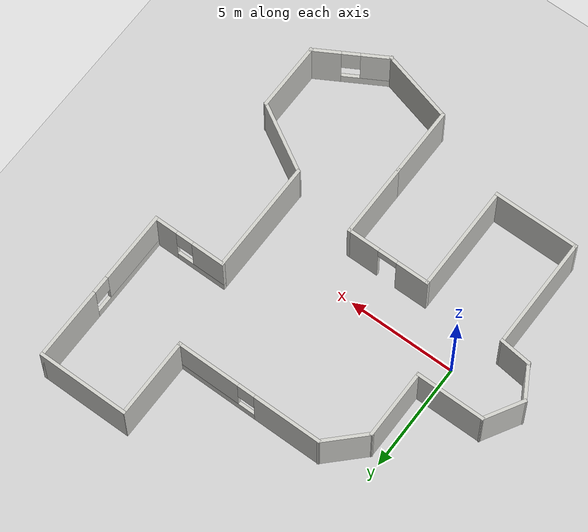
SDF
<?xml version="1.0" ?>
<sdf version="1.4">
  <world name="default">
    <include>
      <uri>model://ground_plane</uri>
    </include>
    <include>
      <uri>model://sun</uri>
    </include>
    <include>
      <uri>model://nav_test</uri>
      <name>nav_test</name>
      <pose>4.7 0.47 0 0 0 0</pose>
    </include>
    <gui fullscreen='0'>
      <camera name='user_camera'>
        <pose>0.8 0.0 12.0 0 1.5708 0</pose>
        <view_controller>orbit</view_controller>
      </camera>
    </gui>
  </world>
</sdf>

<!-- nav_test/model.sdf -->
<sdf version='1.6'>
  <model name='nav_test'>
    <pose frame=''>5.49626 -0.200747 0 0 -0 0</pose>
    <link name='Wall_1'>
      <collision name='Wall_1_Collision'>
        <geometry>
          <box>
            <size>1.75 0.15 2.5</size>
          </box>
        </geometry>
        <pose frame=''>0 0 1.25 0 -0 0</pose>
      </collision>
      <visual name='Wall_1_Visual'>
        <pose frame=''>0 0 1.25 0 -0 0</pose>
        <geometry>
          <box>
            <size>1.75 0.15 2.5</size>
          </box>
        </geometry>
        <material>
          <script>
            <uri>file://media/materials/scripts/gazebo.material</uri>
            <name>Gazebo/CeilingTiled</name>
          </script>
          <ambient>1 1 1 1</ambient>
        </material>
        <meta>
          <layer>0</layer>
        </meta>
      </visual>
      <pose frame=''>-7.81626 -1.01625 0 0 -0 2.09428</pose>
    </link>
    <link name='Wall_10'>
      <pose frame=''>6.56874 2.11375 0 0 -0 3.14159</pose>
      <visual name='Wall_10_Visual_0'>
        <pose frame=''>-1.18335 0 1.25 0 -0 0</pose>
        <geometry>
          <box>
            <size>1.13331 0.15 2.5</size>
          </box>
        </geometry>
        <material>
          <script>
            <uri>file://media/materials/scripts/gazebo.material</uri>
            <name>Gazebo/CeilingTiled</name>
          </script>
          <ambient>1 1 1 1</ambient>
        </material>
        <meta>
          <layer>0</layer>
        </meta>
      </visual>
      <collision name='Wall_10_Collision_0'>
        <geometry>
          <box>
            <size>1.13331 0.15 2.5</size>
          </box>
        </geometry>
        <pose frame=''>-1.18335 0 1.25 0 -0 0</pose>
      </collision>
      <visual name='Wall_10_Visual_1'>
        <pose frame=''>0.566654 0 0.25 0 -0 0</pose>
        <geometry>
          <box>
            <size>2.36669 0.15 0.5</size>
          </box>
        </geometry>
        <material>
          <script>
            <uri>file://media/materials/scripts/gazebo.material</uri>
            <name>Gazebo/CeilingTiled</name>
          </script>
          <ambient>1 1 1 1</ambient>
        </material>
        <meta>
          <layer>0</layer>
        </meta>
      </visual>
      <collision name='Wall_10_Collision_1'>
        <geometry>
          <box>
            <size>2.36669 0.15 0.5</size>
          </box>
        </geometry>
        <pose frame=''>0.566654 0 0.25 0 -0 0</pose>
      </collision>
      <visual name='Wall_10_Visual_2'>
        <pose frame=''>0.966654 0 1.5 0 -0 0</pose>
        <geometry>
          <box>
            <size>1.56669 0.15 2</size>
          </box>
        </geometry>
        <material>
          <script>
            <uri>file://media/materials/scripts/gazebo.material</uri>
            <name>Gazebo/CeilingTiled</name>
          </script>
          <ambient>1 1 1 1</ambient>
        </material>
        <meta>
          <layer>0</layer>
        </meta>
      </visual>
      <collision name='Wall_10_Collision_2'>
        <geometry>
          <box>
            <size>1.56669 0.15 2</size>
          </box>
        </geometry>
        <pose frame=''>0.966654 0 1.5 0 -0 0</pose>
      </collision>
      <visual name='Wall_10_Visual_3'>
        <pose frame=''>-0.216693 0 1.9 0 -0 0</pose>
        <geometry>
          <box>
            <size>0.8 0.15 1.2</size>
          </box>
        </geometry>
        <material>
          <script>
            <uri>file://media/materials/scripts/gazebo.material</uri>
            <name>Gazebo/CeilingTiled</name>
          </script>
          <ambient>1 1 1 1</ambient>
        </material>
        <meta>
          <layer>0</layer>
        </meta>
      </visual>
      <collision name='Wall_10_Collision_3'>
        <geometry>
          <box>
            <size>0.8 0.15 1.2</size>
          </box>
        </geometry>
        <pose frame=''>-0.216693 0 1.9 0 -0 0</pose>
      </collision>
    </link>
    <link name='Wall_11'>
      <collision name='Wall_11_Collision'>
        <geometry>
          <box>
            <size>5.25 0.15 2.5</size>
          </box>
        </geometry>
        <pose frame=''>0 0 1.25 0 -0 0</pose>
      </collision>
      <visual name='Wall_11_Visual'>
        <pose frame=''>0 0 1.25 0 -0 0</pose>
        <geometry>
          <box>
            <size>5.25 0.15 2.5</size>
          </box>
        </geometry>
        <material>
          <script>
            <uri>file://media/materials/scripts/gazebo.material</uri>
            <name>Gazebo/CeilingTiled</name>
          </script>
          <ambient>1 1 1 1</ambient>
        </material>
        <meta>
          <layer>0</layer>
        </meta>
      </visual>
      <pose frame=''>4.89374 -0.436253 0 0 -0 -1.5708</pose>
    </link>
    <link name='Wall_12'>
      <collision name='Wall_12_Collision'>
        <geometry>
          <box>
            <size>3.5 0.15 2.5</size>
          </box>
        </geometry>
        <pose frame=''>0 0 1.25 0 -0 0</pose>
      </collision>
      <visual name='Wall_12_Visual'>
        <pose frame=''>0 0 1.25 0 -0 0</pose>
        <geometry>
          <box>
            <size>3.5 0.15 2.5</size>
          </box>
        </geometry>
        <material>
          <script>
            <uri>file://media/materials/scripts/gazebo.material</uri>
            <name>Gazebo/CeilingTiled</name>
          </script>
          <ambient>1 1 1 1</ambient>
        </material>
        <meta>
          <layer>0</layer>
        </meta>
      </visual>
      <pose frame=''>6.34424 -3.82375 0 0 -0 -0.523626</pose>
    </link>
    <link name='Wall_13'>
      <collision name='Wall_13_Collision'>
        <geometry>
          <box>
            <size>3.25 0.15 2.5</size>
          </box>
        </geometry>
        <pose frame=''>0 0 1.25 0 -0 0</pose>
      </collision>
      <visual name='Wall_13_Visual'>
        <pose frame=''>0 0 1.25 0 -0 0</pose>
        <geometry>
          <box>
            <size>3.25 0.15 2.5</size>
          </box>
        </geometry>
        <material>
          <script>
            <uri>file://media/materials/scripts/gazebo.material</uri>
            <name>Gazebo/CeilingTiled</name>
          </script>
          <ambient>1 1 1 1</ambient>
        </material>
        <meta>
          <layer>0</layer>
        </meta>
      </visual>
      <pose frame=''>7.79474 -6.21125 0 0 -0 -1.5708</pose>
    </link>
    <link name='Wall_14'>
      <pose frame=''>6.34424 -8.59875 0 0 -0 -2.61797</pose>
      <visual name='Wall_14_Visual_0'>
        <pose frame=''>-1.07636 0 1.25 0 -0 0</pose>
        <geometry>
          <box>
            <size>1.34727 0.15 2.5</size>
          </box>
        </geometry>
        <material>
          <script>
            <uri>file://media/materials/scripts/gazebo.material</uri>
            <name>Gazebo/CeilingTiled</name>
          </script>
          <ambient>1 1 1 1</ambient>
        </material>
        <meta>
          <layer>0</layer>
        </meta>
      </visual>
      <collision name='Wall_14_Collision_0'>
        <geometry>
          <box>
            <size>1.34727 0.15 2.5</size>
          </box>
        </geometry>
        <pose frame=''>-1.07636 0 1.25 0 -0 0</pose>
      </collision>
      <visual name='Wall_14_Visual_1'>
        <pose frame=''>0.673636 0 0.25 0 -0 0</pose>
        <geometry>
          <box>
            <size>2.15273 0.15 0.5</size>
          </box>
        </geometry>
        <material>
          <script>
            <uri>file://media/materials/scripts/gazebo.material</uri>
            <name>Gazebo/CeilingTiled</name>
          </script>
          <ambient>1 1 1 1</ambient>
        </material>
        <meta>
          <layer>0</layer>
        </meta>
      </visual>
      <collision name='Wall_14_Collision_1'>
        <geometry>
          <box>
            <size>2.15273 0.15 0.5</size>
          </box>
        </geometry>
        <pose frame=''>0.673636 0 0.25 0 -0 0</pose>
      </collision>
      <visual name='Wall_14_Visual_2'>
        <pose frame=''>1.07364 0 1.5 0 -0 0</pose>
        <geometry>
          <box>
            <size>1.35273 0.15 2</size>
          </box>
        </geometry>
        <material>
          <script>
            <uri>file://media/materials/scripts/gazebo.material</uri>
            <name>Gazebo/CeilingTiled</name>
          </script>
          <ambient>1 1 1 1</ambient>
        </material>
        <meta>
          <layer>0</layer>
        </meta>
      </visual>
      <collision name='Wall_14_Collision_2'>
        <geometry>
          <box>
            <size>1.35273 0.15 2</size>
          </box>
        </geometry>
        <pose frame=''>1.07364 0 1.5 0 -0 0</pose>
      </collision>
      <visual name='Wall_14_Visual_3'>
        <pose frame=''>-0.002728 0 1.9 0 -0 0</pose>
        <geometry>
          <box>
            <size>0.8 0.15 1.2</size>
          </box>
        </geometry>
        <material>
          <script>
            <uri>file://media/materials/scripts/gazebo.material</uri>
            <name>Gazebo/CeilingTiled</name>
          </script>
          <ambient>1 1 1 1</ambient>
        </material>
        <meta>
          <layer>0</layer>
        </meta>
      </visual>
      <collision name='Wall_14_Collision_3'>
        <geometry>
          <box>
            <size>0.8 0.15 1.2</size>
          </box>
        </geometry>
        <pose frame=''>-0.002728 0 1.9 0 -0 0</pose>
      </collision>
    </link>
    <link name='Wall_15'>
      <collision name='Wall_15_Collision'>
        <geometry>
          <box>
            <size>3.5 0.15 2.5</size>
          </box>
        </geometry>
        <pose frame=''>0 0 1.25 0 -0 0</pose>
      </collision>
      <visual name='Wall_15_Visual'>
        <pose frame=''>0 0 1.25 0 -0 0</pose>
        <geometry>
          <box>
            <size>3.5 0.15 2.5</size>
          </box>
        </geometry>
        <material>
          <script>
            <uri>file://media/materials/scripts/gazebo.material</uri>
            <name>Gazebo/CeilingTiled</name>
          </script>
          <ambient>1 1 1 1</ambient>
        </material>
        <meta>
          <layer>0</layer>
        </meta>
      </visual>
      <pose frame=''>3.27574 -9.00275 0 0 -0 2.87982</pose>
    </link>
    <link name='Wall_16'>
      <collision name='Wall_16_Collision'>
        <geometry>
          <box>
            <size>3.25 0.15 2.5</size>
          </box>
        </geometry>
        <pose frame=''>0 0 1.25 0 -0 0</pose>
      </collision>
      <visual name='Wall_16_Visual'>
        <pose frame=''>0 0 1.25 0 -0 0</pose>
        <geometry>
          <box>
            <size>3.25 0.15 2.5</size>
          </box>
        </geometry>
        <material>
          <script>
            <uri>file://media/materials/scripts/gazebo.material</uri>
            <name>Gazebo/CeilingTiled</name>
          </script>
          <ambient>1 1 1 1</ambient>
        </material>
        <meta>
          <layer>0</layer>
        </meta>
      </visual>
      <pose frame=''>1.65774 -7.01925 0 0 -0 1.5708</pose>
    </link>
    <link name='Wall_17'>
      <collision name='Wall_17_Collision'>
        <geometry>
          <box>
            <size>3.5 0.15 2.5</size>
          </box>
        </geometry>
        <pose frame=''>0 0 1.25 0 -0 0</pose>
      </collision>
      <visual name='Wall_17_Visual'>
        <pose frame=''>0 0 1.25 0 -0 0</pose>
        <geometry>
          <box>
            <size>3.5 0.15 2.5</size>
          </box>
        </geometry>
        <material>
          <script>
            <uri>file://media/materials/scripts/gazebo.material</uri>
            <name>Gazebo/CeilingTiled</name>
          </script>
          <ambient>1 1 1 1</ambient>
        </material>
        <meta>
          <layer>0</layer>
        </meta>
      </visual>
      <pose frame=''>1.65774 -3.79425 0 0 -0 1.5708</pose>
    </link>
    <link name='Wall_18'>
      <pose frame=''>-0.267258 -2.11925 0 0 -0 3.14159</pose>
      <visual name='Wall_18_Visual_0'>
        <pose frame=''>-1.2314 0 1.25 0 -0 0</pose>
        <geometry>
          <box>
            <size>1.53721 0.15 2.5</size>
          </box>
        </geometry>
        <material>
          <script>
            <uri>file://media/materials/scripts/gazebo.material</uri>
            <name>Gazebo/CeilingTiled</name>
          </script>
          <ambient>1 1 1 1</ambient>
        </material>
        <meta>
          <layer>0</layer>
        </meta>
      </visual>
      <collision name='Wall_18_Collision_0'>
        <geometry>
          <box>
            <size>1.53721 0.15 2.5</size>
          </box>
        </geometry>
        <pose frame=''>-1.2314 0 1.25 0 -0 0</pose>
      </collision>
      <visual name='Wall_18_Visual_1'>
        <pose frame=''>1.2186 0 1.25 0 -0 0</pose>
        <geometry>
          <box>
            <size>1.56279 0.15 2.5</size>
          </box>
        </geometry>
        <material>
          <script>
            <uri>file://media/materials/scripts/gazebo.material</uri>
            <name>Gazebo/CeilingTiled</name>
          </script>
          <ambient>1 1 1 1</ambient>
        </material>
        <meta>
          <layer>0</layer>
        </meta>
      </visual>
      <collision name='Wall_18_Collision_1'>
        <geometry>
          <box>
            <size>1.56279 0.15 2.5</size>
          </box>
        </geometry>
        <pose frame=''>1.2186 0 1.25 0 -0 0</pose>
      </collision>
      <visual name='Wall_18_Visual_2'>
        <pose frame=''>-0.012794 0 2.25 0 -0 0</pose>
        <geometry>
          <box>
            <size>0.9 0.15 0.5</size>
          </box>
        </geometry>
        <material>
          <script>
            <uri>file://media/materials/scripts/gazebo.material</uri>
            <name>Gazebo/CeilingTiled</name>
          </script>
          <ambient>1 1 1 1</ambient>
        </material>
        <meta>
          <layer>0</layer>
        </meta>
      </visual>
      <collision name='Wall_18_Collision_2'>
        <geometry>
          <box>
            <size>0.9 0.15 0.5</size>
          </box>
        </geometry>
        <pose frame=''>-0.012794 0 2.25 0 -0 0</pose>
      </collision>
    </link>
    <link name='Wall_19'>
      <collision name='Wall_19_Collision'>
        <geometry>
          <box>
            <size>5 0.15 2.5</size>
          </box>
        </geometry>
        <pose frame=''>0 0 1.25 0 -0 0</pose>
      </collision>
      <visual name='Wall_19_Visual'>
        <pose frame=''>0 0 1.25 0 -0 0</pose>
        <geometry>
          <box>
            <size>5 0.15 2.5</size>
          </box>
        </geometry>
        <material>
          <script>
            <uri>file://media/materials/scripts/gazebo.material</uri>
            <name>Gazebo/CeilingTiled</name>
          </script>
          <ambient>1 1 1 1</ambient>
        </material>
        <meta>
          <layer>0</layer>
        </meta>
      </visual>
      <pose frame=''>-2.19226 -4.54425 0 0 -0 -1.5708</pose>
    </link>
    <link name='Wall_2'>
      <collision name='Wall_2_Collision'>
        <geometry>
          <box>
            <size>2 0.15 2.5</size>
          </box>
        </geometry>
        <pose frame=''>0 0 1.25 0 -0 0</pose>
      </collision>
      <visual name='Wall_2_Visual'>
        <pose frame=''>0 0 1.25 0 -0 0</pose>
        <geometry>
          <box>
            <size>2 0.15 2.5</size>
          </box>
        </geometry>
        <material>
          <script>
            <uri>file://media/materials/scripts/gazebo.material</uri>
            <name>Gazebo/CeilingTiled</name>
          </script>
          <ambient>1 1 1 1</ambient>
        </material>
        <meta>
          <layer>0</layer>
        </meta>
      </visual>
      <pose frame=''>-7.75376 0.477747 0 0 -0 1.04716</pose>
    </link>
    <link name='Wall_20'>
      <collision name='Wall_20_Collision'>
        <geometry>
          <box>
            <size>4 0.15 2.5</size>
          </box>
        </geometry>
        <pose frame=''>0 0 1.25 0 -0 0</pose>
      </collision>
      <visual name='Wall_20_Visual'>
        <pose frame=''>0 0 1.25 0 -0 0</pose>
        <geometry>
          <box>
            <size>4 0.15 2.5</size>
          </box>
        </geometry>
        <material>
          <script>
            <uri>file://media/materials/scripts/gazebo.material</uri>
            <name>Gazebo/CeilingTiled</name>
          </script>
          <ambient>1 1 1 1</ambient>
        </material>
        <meta>
          <layer>0</layer>
        </meta>
      </visual>
      <pose frame=''>-4.11726 -6.96925 0 0 -0 3.14159</pose>
    </link>
    <link name='Wall_21'>
      <collision name='Wall_21_Collision'>
        <geometry>
          <box>
            <size>5.25 0.15 2.5</size>
          </box>
        </geometry>
        <pose frame=''>0 0 1.25 0 -0 0</pose>
      </collision>
      <visual name='Wall_21_Visual'>
        <pose frame=''>0 0 1.25 0 -0 0</pose>
        <geometry>
          <box>
            <size>5.25 0.15 2.5</size>
          </box>
        </geometry>
        <material>
          <script>
            <uri>file://media/materials/scripts/gazebo.material</uri>
            <name>Gazebo/CeilingTiled</name>
          </script>
          <ambient>1 1 1 1</ambient>
        </material>
        <meta>
          <layer>0</layer>
        </meta>
      </visual>
      <pose frame=''>-6.04226 -4.41925 0 0 -0 1.5708</pose>
    </link>
    <link name='Wall_22'>
      <collision name='Wall_22_Collision'>
        <geometry>
          <box>
            <size>1.53338 0.15 2.5</size>
          </box>
        </geometry>
        <pose frame=''>0 0 1.25 0 -0 0</pose>
      </collision>
      <visual name='Wall_22_Visual'>
        <pose frame=''>0 0 1.25 0 -0 0</pose>
        <geometry>
          <box>
            <size>1.53338 0.15 2.5</size>
          </box>
        </geometry>
        <material>
          <script>
            <uri>file://media/materials/scripts/gazebo.material</uri>
            <name>Gazebo/CeilingTiled</name>
          </script>
          <ambient>1 1 1 1</ambient>
        </material>
        <meta>
          <layer>0</layer>
        </meta>
      </visual>
      <pose frame=''>-6.72926 -1.78925 0 0 -0 3.02567</pose>
    </link>
    <link name='Wall_3'>
      <collision name='Wall_3_Collision'>
        <geometry>
          <box>
            <size>3.25 0.15 2.5</size>
          </box>
        </geometry>
        <pose frame=''>0 0 1.25 0 -0 0</pose>
      </collision>
      <visual name='Wall_3_Visual'>
        <pose frame=''>0 0 1.25 0 -0 0</pose>
        <geometry>
          <box>
            <size>3.25 0.15 2.5</size>
          </box>
        </geometry>
        <material>
          <script>
            <uri>file://media/materials/scripts/gazebo.material</uri>
            <name>Gazebo/CeilingTiled</name>
          </script>
          <ambient>1 1 1 1</ambient>
        </material>
        <meta>
          <layer>0</layer>
        </meta>
      </visual>
      <pose frame=''>-5.74126 1.27875 0 0 -0 0</pose>
    </link>
    <link name='Wall_4'>
      <collision name='Wall_4_Collision'>
        <geometry>
          <box>
            <size>3.25 0.15 2.5</size>
          </box>
        </geometry>
        <pose frame=''>0 0 1.25 0 -0 0</pose>
      </collision>
      <visual name='Wall_4_Visual'>
        <pose frame=''>0 0 1.25 0 -0 0</pose>
        <geometry>
          <box>
            <size>3.25 0.15 2.5</size>
          </box>
        </geometry>
        <material>
          <script>
            <uri>file://media/materials/scripts/gazebo.material</uri>
            <name>Gazebo/CeilingTiled</name>
          </script>
          <ambient>1 1 1 1</ambient>
        </material>
        <meta>
          <layer>0</layer>
        </meta>
      </visual>
      <pose frame=''>-4.19126 2.82875 0 0 -0 1.5708</pose>
    </link>
    <link name='Wall_5'>
      <collision name='Wall_5_Collision'>
        <geometry>
          <box>
            <size>2.25 0.15 2.5</size>
          </box>
        </geometry>
        <pose frame=''>0 0 1.25 0 -0 0</pose>
      </collision>
      <visual name='Wall_5_Visual'>
        <pose frame=''>0 0 1.25 0 -0 0</pose>
        <geometry>
          <box>
            <size>2.25 0.15 2.5</size>
          </box>
        </geometry>
        <material>
          <script>
            <uri>file://media/materials/scripts/gazebo.material</uri>
            <name>Gazebo/CeilingTiled</name>
          </script>
          <ambient>1 1 1 1</ambient>
        </material>
        <meta>
          <layer>0</layer>
        </meta>
      </visual>
      <pose frame=''>-3.44876 5.12125 0 0 -0 0.785398</pose>
    </link>
    <link name='Wall_6'>
      <pose frame=''>0.718742 5.86375 0 0 -0 0</pose>
      <visual name='Wall_6_Visual_0'>
        <pose frame=''>-1.89346 0 1.25 0 -0 0</pose>
        <geometry>
          <box>
            <size>3.21307 0.15 2.5</size>
          </box>
        </geometry>
        <material>
          <script>
            <uri>file://media/materials/scripts/gazebo.material</uri>
            <name>Gazebo/CeilingTiled</name>
          </script>
          <ambient>1 1 1 1</ambient>
        </material>
        <meta>
          <layer>0</layer>
        </meta>
      </visual>
      <collision name='Wall_6_Collision_0'>
        <geometry>
          <box>
            <size>3.21307 0.15 2.5</size>
          </box>
        </geometry>
        <pose frame=''>-1.89346 0 1.25 0 -0 0</pose>
      </collision>
      <visual name='Wall_6_Visual_1'>
        <pose frame=''>1.60654 0 0.25 0 -0 0</pose>
        <geometry>
          <box>
            <size>3.78693 0.15 0.5</size>
          </box>
        </geometry>
        <material>
          <script>
            <uri>file://media/materials/scripts/gazebo.material</uri>
            <name>Gazebo/CeilingTiled</name>
          </script>
          <ambient>1 1 1 1</ambient>
        </material>
        <meta>
          <layer>0</layer>
        </meta>
      </visual>
      <collision name='Wall_6_Collision_1'>
        <geometry>
          <box>
            <size>3.78693 0.15 0.5</size>
          </box>
        </geometry>
        <pose frame=''>1.60654 0 0.25 0 -0 0</pose>
      </collision>
      <visual name='Wall_6_Visual_2'>
        <pose frame=''>2.00654 0 1.5 0 -0 0</pose>
        <geometry>
          <box>
            <size>2.98692 0.15 2</size>
          </box>
        </geometry>
        <material>
          <script>
            <uri>file://media/materials/scripts/gazebo.material</uri>
            <name>Gazebo/CeilingTiled</name>
          </script>
          <ambient>1 1 1 1</ambient>
        </material>
        <meta>
          <layer>0</layer>
        </meta>
      </visual>
      <collision name='Wall_6_Collision_2'>
        <geometry>
          <box>
            <size>2.98692 0.15 2</size>
          </box>
        </geometry>
        <pose frame=''>2.00654 0 1.5 0 -0 0</pose>
      </collision>
      <visual name='Wall_6_Visual_3'>
        <pose frame=''>0.113075 0 1.9 0 -0 0</pose>
        <geometry>
          <box>
            <size>0.8 0.15 1.2</size>
          </box>
        </geometry>
        <material>
          <script>
            <uri>file://media/materials/scripts/gazebo.material</uri>
            <name>Gazebo/CeilingTiled</name>
          </script>
          <ambient>1 1 1 1</ambient>
        </material>
        <meta>
          <layer>0</layer>
        </meta>
      </visual>
      <collision name='Wall_6_Collision_3'>
        <geometry>
          <box>
            <size>0.8 0.15 1.2</size>
          </box>
        </geometry>
        <pose frame=''>0.113075 0 1.9 0 -0 0</pose>
      </collision>
    </link>
    <link name='Wall_7'>
      <collision name='Wall_7_Collision'>
        <geometry>
          <box>
            <size>3.75 0.15 2.5</size>
          </box>
        </geometry>
        <pose frame=''>0 0 1.25 0 -0 0</pose>
      </collision>
      <visual name='Wall_7_Visual'>
        <pose frame=''>0 0 1.25 0 -0 0</pose>
        <geometry>
          <box>
            <size>3.75 0.15 2.5</size>
          </box>
        </geometry>
        <material>
          <script>
            <uri>file://media/materials/scripts/gazebo.material</uri>
            <name>Gazebo/CeilingTiled</name>
          </script>
          <ambient>1 1 1 1</ambient>
        </material>
        <meta>
          <layer>0</layer>
        </meta>
      </visual>
      <pose frame=''>4.14374 7.66375 0 0 -0 1.5708</pose>
    </link>
    <link name='Wall_8'>
      <collision name='Wall_8_Collision'>
        <geometry>
          <box>
            <size>4.25 0.15 2.5</size>
          </box>
        </geometry>
        <pose frame=''>0 0 1.25 0 -0 0</pose>
      </collision>
      <visual name='Wall_8_Visual'>
        <pose frame=''>0 0 1.25 0 -0 0</pose>
        <geometry>
          <box>
            <size>4.25 0.15 2.5</size>
          </box>
        </geometry>
        <material>
          <script>
            <uri>file://media/materials/scripts/gazebo.material</uri>
            <name>Gazebo/CeilingTiled</name>
          </script>
          <ambient>1 1 1 1</ambient>
        </material>
        <meta>
          <layer>0</layer>
        </meta>
      </visual>
      <pose frame=''>6.19374 9.46375 0 0 -0 0</pose>
    </link>
    <link name='Wall_9'>
      <pose frame=''>8.24374 5.78875 0 0 -0 -1.5708</pose>
      <visual name='Wall_9_Visual_0'>
        <pose frame=''>-2.0564 0 1.25 0 -0 0</pose>
        <geometry>
          <box>
            <size>3.3872 0.15 2.5</size>
          </box>
        </geometry>
        <material>
          <script>
            <uri>file://media/materials/scripts/gazebo.material</uri>
            <name>Gazebo/CeilingTiled</name>
          </script>
          <ambient>1 1 1 1</ambient>
        </material>
        <meta>
          <layer>0</layer>
        </meta>
      </visual>
      <collision name='Wall_9_Collision_0'>
        <geometry>
          <box>
            <size>3.3872 0.15 2.5</size>
          </box>
        </geometry>
        <pose frame=''>-2.0564 0 1.25 0 -0 0</pose>
      </collision>
      <visual name='Wall_9_Visual_1'>
        <pose frame=''>1.6936 0 0.25 0 -0 0</pose>
        <geometry>
          <box>
            <size>4.1128 0.15 0.5</size>
          </box>
        </geometry>
        <material>
          <script>
            <uri>file://media/materials/scripts/gazebo.material</uri>
            <name>Gazebo/CeilingTiled</name>
          </script>
          <ambient>1 1 1 1</ambient>
        </material>
        <meta>
          <layer>0</layer>
        </meta>
      </visual>
      <collision name='Wall_9_Collision_1'>
        <geometry>
          <box>
            <size>4.1128 0.15 0.5</size>
          </box>
        </geometry>
        <pose frame=''>1.6936 0 0.25 0 -0 0</pose>
      </collision>
      <visual name='Wall_9_Visual_2'>
        <pose frame=''>2.0936 0 1.5 0 -0 0</pose>
        <geometry>
          <box>
            <size>3.3128 0.15 2</size>
          </box>
        </geometry>
        <material>
          <script>
            <uri>file://media/materials/scripts/gazebo.material</uri>
            <name>Gazebo/CeilingTiled</name>
          </script>
          <ambient>1 1 1 1</ambient>
        </material>
        <meta>
          <layer>0</layer>
        </meta>
      </visual>
      <collision name='Wall_9_Collision_2'>
        <geometry>
          <box>
            <size>3.3128 0.15 2</size>
          </box>
        </geometry>
        <pose frame=''>2.0936 0 1.5 0 -0 0</pose>
      </collision>
      <visual name='Wall_9_Visual_3'>
        <pose frame=''>0.037202 0 1.9 0 -0 0</pose>
        <geometry>
          <box>
            <size>0.8 0.15 1.2</size>
          </box>
        </geometry>
        <material>
          <script>
            <uri>file://media/materials/scripts/gazebo.material</uri>
            <name>Gazebo/CeilingTiled</name>
          </script>
          <ambient>1 1 1 1</ambient>
        </material>
        <meta>
          <layer>0</layer>
        </meta>
      </visual>
      <collision name='Wall_9_Collision_3'>
        <geometry>
          <box>
            <size>0.8 0.15 1.2</size>
          </box>
        </geometry>
        <pose frame=''>0.037202 0 1.9 0 -0 0</pose>
      </collision>
    </link>
    <static>1</static>
  </model>
</sdf>
